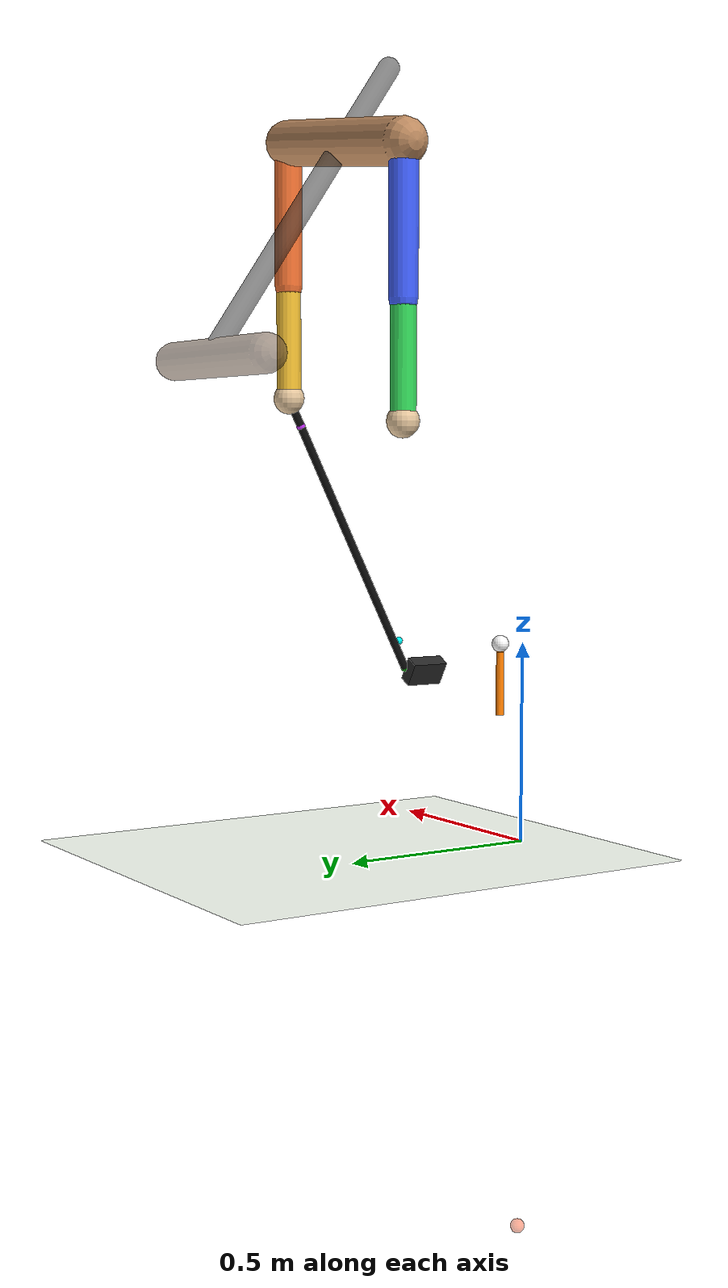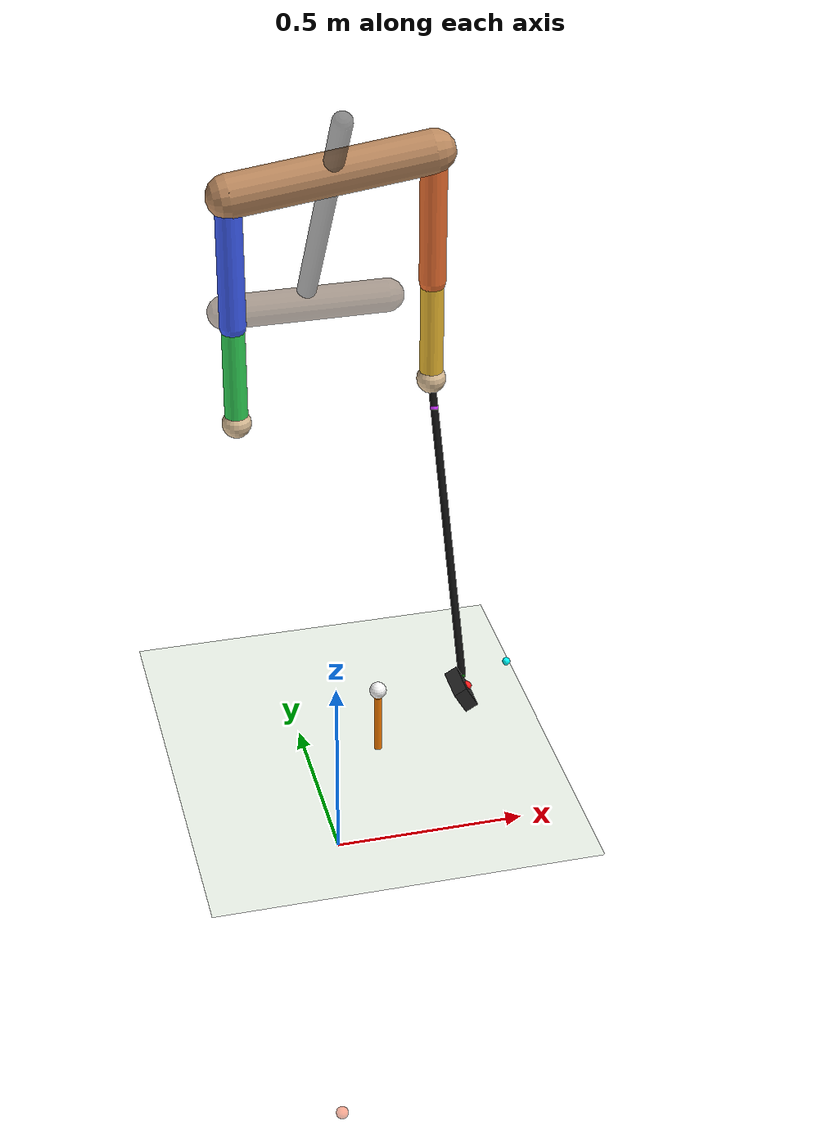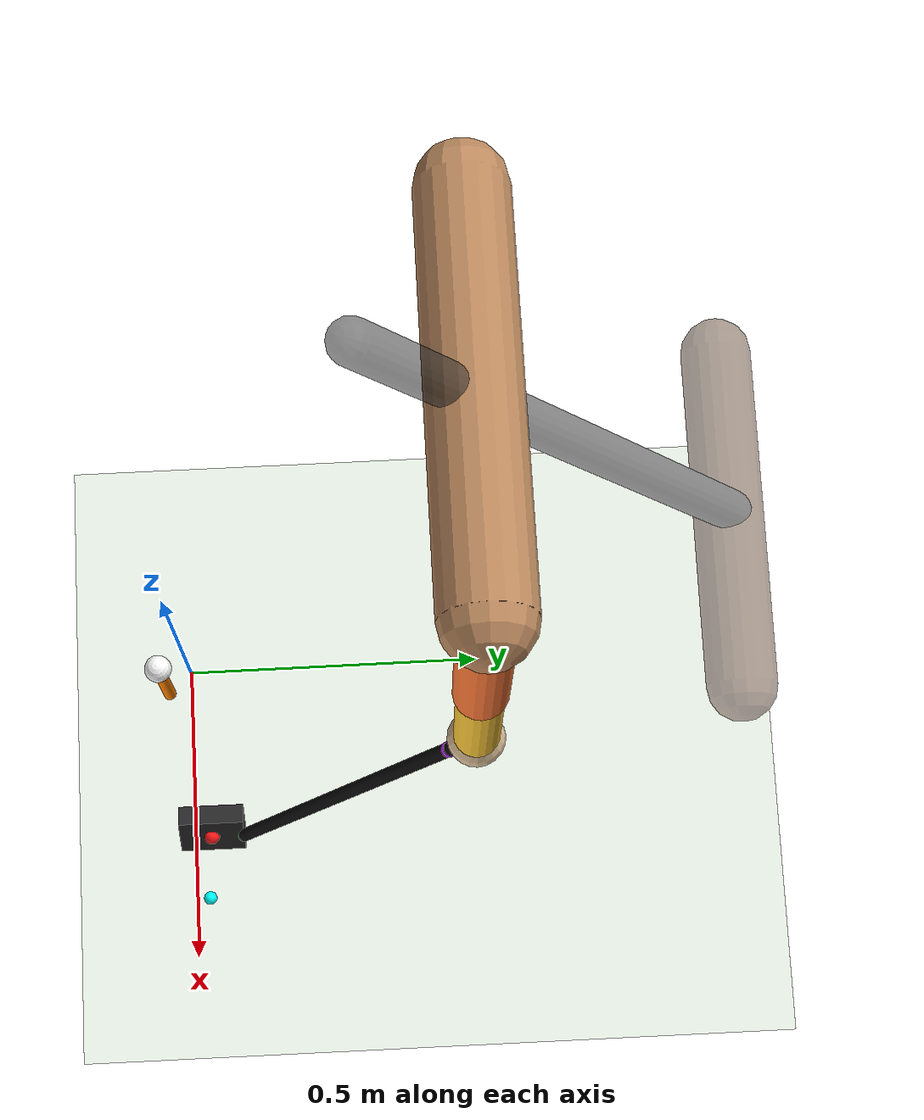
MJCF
<mujoco model="two_arm_joint_golf">
  <compiler angle="radian"/>

  <option integrator="RK4"/>

  <default>
    <joint armature="0.01" damping="1"/>
    <geom friction="0.9 0.02 0.001"/>
  </default>

  <worldbody>
    <geom name="floor" size="8 8 0.1" type="plane" rgba="0.76 0.86 0.72 1"/>
    <geom name="fixed_spine_axis" size="0.026 0.4" pos="0.105 0.563244 1.54055" quat="0.300706 -0.953717 0 0" type="capsule" contype="0" conaffinity="0" rgba="0.18 0.18 0.18 0.55"/>
    <geom name="fixed_pelvis_bar" size="0.045 0.22" pos="0.105 0.792674 1.18289" quat="0.707107 0 -0.707107 0" type="capsule" contype="0" conaffinity="0" rgba="0.42 0.32 0.24 0.55"/>
    <geom name="chest_hinge_marker" size="0.032" pos="0.105 0.46 1.688" contype="0" conaffinity="0" rgba="0.05 0.05 0.05 0.65"/>
    <light pos="0 1 3" dir="0 -0.287348 -0.957826" diffuse="1 1 1"/>
    <body name="tee" pos="0.1053 -0.0079 0.388964">
      <geom name="tee_geom" size="0.01 0.08" type="cylinder" rgba="1 0.5 0 1"/>
    </body>
    <body name="ball" pos="0.1053 -0.0079 0.4903">
      <joint name="ball_free" type="free"/>
      <geom name="golf_ball" size="0.021336" condim="4" friction="0.45 0.01" solref="0.004" solimp="0.99 0.995" mass="0.046" rgba="1 1 1 1"/>
    </body>
    <body name="target_left_wrist_body" pos="0 0 -1" mocap="true">
      <geom name="target_left_wrist_geom" size="0.018" contype="0" conaffinity="0" rgba="1 0.3 0.1 0.45"/>
    </body>
    <body name="target_right_wrist_body" pos="0 0 -1" mocap="true">
      <geom name="target_right_wrist_geom" size="0.018" contype="0" conaffinity="0" rgba="0.1 0.5 1 0.45"/>
    </body>
    <body name="target_clubhead_body" pos="0 0 -1" mocap="true">
      <geom name="target_clubhead_geom" size="0.018" contype="0" conaffinity="0" rgba="1 1 0 0.55"/>
    </body>
    <body name="target_left_elbow_body" pos="0 0 -1" mocap="true">
      <geom name="target_left_elbow_geom" size="0.018" contype="0" conaffinity="0" rgba="1 0.6 0.1 0.35"/>
    </body>
    <body name="target_right_elbow_body" pos="0 0 -1" mocap="true">
      <geom name="target_right_elbow_geom" size="0.018" contype="0" conaffinity="0" rgba="0.1 1 0.4 0.35"/>
    </body>
    <body name="chest" pos="0.105 0.46 1.688">
      <joint name="chest_turn" pos="0 0 0" axis="0 -0.573576 0.819152" limited="true" range="-2.18166 2.18166" armature="0.08" damping="4"/>
      <joint name="chest_forward_bend" pos="0 0 0" axis="0 1 0" limited="true" range="-0.436332 0.314159" armature="0.1" damping="5"/>
      <geom name="chest_bar" size="0.055 0.256008" quat="0.661439 0 -0.749999 0" type="capsule" mass="16" rgba="0.75 0.55 0.38 1"/>
      <site name="right_shoulder_site" pos="-0.254 0 -0.032" size="0.018" rgba="0.1 0.1 1 1"/>
      <site name="left_shoulder_site" pos="0.254 0 0.032" size="0.018" rgba="1 0.2 0.1 1"/>
      <body name="right_shoulder_turn_body" pos="-0.254 0 -0.032">
        <inertial pos="0 0 0" mass="0.001" diaginertia="1e-06 1e-06 1e-06"/>
        <joint name="right_shoulder_turn" pos="0 0 0" axis="0 0 1" limited="true" range="-2.79253 2.79253" armature="0.05" damping="2.5"/>
        <body name="right_shoulder_lift_body">
          <inertial pos="0 0 0" mass="0.001" diaginertia="1e-06 1e-06 1e-06"/>
          <joint name="right_shoulder_lift" pos="0 0 0" axis="1 0 0" limited="true" range="-2.79253 2.79253" armature="0.05" damping="2.5"/>
          <body name="right_upper_arm">
            <joint name="right_shoulder_roll" pos="0 0 0" axis="0 0 1" limited="true" range="-2.44346 2.44346" armature="0.03" damping="1.5"/>
            <geom name="right_upper_arm_geom" size="0.034 0.1722" pos="0 0 -0.1722" type="capsule" mass="1.9" rgba="0.25 0.38 1 1"/>
            <body name="right_elbow_flex_body" pos="0 0 -0.3444">
              <inertial pos="0 0 0" mass="0.001" diaginertia="1e-06 1e-06 1e-06"/>
              <joint name="right_elbow_flex" pos="0 0 0" axis="-1 0 0" limited="true" range="0 2.35619" armature="0.035" damping="1.8"/>
              <site name="right_elbow_site" pos="0 0 0" size="0.012" rgba="1 0.5 0 1"/>
              <body name="right_forearm">
                <joint name="right_forearm_rotation" pos="0 0 0" axis="0 0 -1" limited="true" range="-2.0944 2.0944" armature="0.024" damping="1.2"/>
                <geom name="right_forearm_geom" size="0.03 0.1366" pos="0 0 -0.1366" type="capsule" mass="1.25" rgba="0.2 0.85 0.35 1"/>
                <body name="right_wrist_flex_body" pos="0 0 -0.2732">
                  <inertial pos="0 0 0" mass="0.001" diaginertia="1e-06 1e-06 1e-06"/>
                  <joint name="right_wrist_flex" pos="0 0 0" axis="-1 0 0" limited="true" range="-1.5708 1.5708" armature="0.02"/>
                  <body name="right_hand">
                    <joint name="right_wrist_deviation" pos="0 0 0" axis="0 1 0" limited="true" range="-1.22173 0.872665" armature="0.02"/>
                    <geom name="right_hand_geom" size="0.038" mass="0.45" rgba="0.9 0.78 0.62 1"/>
                    <site name="right_grip_site" pos="0 0 0" size="0.012" rgba="0 0.8 1 1"/>
                  </body>
                </body>
              </body>
            </body>
          </body>
        </body>
      </body>
      <body name="left_shoulder_turn_body" pos="0.254 0 0.032">
        <inertial pos="0 0 0" mass="0.001" diaginertia="1e-06 1e-06 1e-06"/>
        <joint name="left_shoulder_turn" pos="0 0 0" axis="0 0 1" limited="true" range="-2.79253 2.79253" armature="0.05" damping="2.5"/>
        <body name="left_shoulder_lift_body">
          <inertial pos="0 0 0" mass="0.001" diaginertia="1e-06 1e-06 1e-06"/>
          <joint name="left_shoulder_lift" pos="0 0 0" axis="1 0 0" limited="true" range="-2.79253 2.79253" armature="0.05" damping="2.5"/>
          <body name="left_upper_arm">
            <joint name="left_shoulder_roll" pos="0 0 0" axis="0 0 1" limited="true" range="-2.44346 2.44346" armature="0.03" damping="1.5"/>
            <geom name="left_upper_arm_geom" size="0.034 0.1722" pos="0 0 -0.1722" type="capsule" mass="1.9" rgba="0.95 0.45 0.2 1"/>
            <body name="left_elbow_flex_body" pos="0 0 -0.3444">
              <inertial pos="0 0 0" mass="0.001" diaginertia="1e-06 1e-06 1e-06"/>
              <joint name="left_elbow_flex" pos="0 0 0" axis="-1 0 0" limited="true" range="0 2.35619" armature="0.035" damping="1.8"/>
              <site name="left_elbow_site" pos="0 0 0" size="0.012" rgba="1 0.5 0 1"/>
              <body name="left_forearm">
                <joint name="left_forearm_rotation" pos="0 0 0" axis="0 0 -1" limited="true" range="-2.0944 2.0944" armature="0.024" damping="1.2"/>
                <geom name="left_forearm_geom" size="0.03 0.1366" pos="0 0 -0.1366" type="capsule" mass="1.25" rgba="0.95 0.75 0.2 1"/>
                <body name="left_wrist_flex_body" pos="0 0 -0.2732">
                  <inertial pos="0 0 0" mass="0.001" diaginertia="1e-06 1e-06 1e-06"/>
                  <joint name="left_wrist_flex" pos="0 0 0" axis="1 0 0" limited="true" range="-1.5708 1.5708" armature="0.02"/>
                  <body name="left_hand">
                    <joint name="left_wrist_deviation" pos="0 0 0" axis="0 1 0" limited="true" range="-1.22173 0.872665" armature="0.02"/>
                    <geom name="left_hand_geom" size="0.038" mass="0.45" rgba="0.9 0.78 0.62 1"/>
                    <site name="left_grip_site" pos="0 0 0" size="0.012" rgba="0 0.8 1 1"/>
                    <body name="club">
                      <geom name="club_shaft_geom" size="0.01 0.386395" pos="0 -0.174 -0.345" quat="0.972849 -0.231442 0 0" type="capsule" mass="0.1" rgba="0.05 0.05 0.05 1"/>
                      <geom name="club_head_geom" size="0.018 0.05 0.032" pos="-0.015588 -0.398 -0.699" quat="0.965926 0 -0.258819 0" type="box" condim="4" friction="0.8" solref="0.004" solimp="0.99 0.995" mass="0.27" rgba="0.16 0.16 0.16 1"/>
                      <site name="club_grip_site" pos="0 0 0" size="0.012" rgba="0 0.7 1 1"/>
                      <site name="club_trail_grip_site" pos="0 -0.034314 -0.068037" size="0.011" rgba="0.8 0.2 1 1"/>
                      <site name="club_mid_site" pos="0 -0.174 -0.345" size="0.009" rgba="1 0.8 0 1"/>
                      <site name="club_heel_site" pos="0 -0.348 -0.69" size="0.01" rgba="0.1 1 0.1 1"/>
                      <site name="clubhead_site" pos="0 -0.398 -0.69" size="0.012" rgba="1 0.1 0.1 1"/>
                      <site name="club_face_normal_site" pos="0.103923 -0.398 -0.63" size="0.01" rgba="0 1 1 1"/>
                    </body>
                  </body>
                </body>
              </body>
            </body>
          </body>
        </body>
      </body>
    </body>
  </worldbody>

  <equality>
    <weld name="right_hand_rigid_grip" site1="right_grip_site" site2="club_trail_grip_site" torquescale="1" solref="0.006" solimp="0.99 0.995"/>
  </equality>

  <actuator>
    <general name="chest_turn_motor" joint="chest_turn" ctrllimited="true" ctrlrange="-120 120"/>
    <general name="chest_forward_bend_motor" joint="chest_forward_bend" ctrllimited="true" ctrlrange="-85 85"/>
    <general name="left_shoulder_turn_motor" joint="left_shoulder_turn" ctrllimited="true" ctrlrange="-75 75"/>
    <general name="left_shoulder_lift_motor" joint="left_shoulder_lift" ctrllimited="true" ctrlrange="-75 75"/>
    <general name="left_shoulder_roll_motor" joint="left_shoulder_roll" ctrllimited="true" ctrlrange="-45 45"/>
    <general name="left_elbow_flex_motor" joint="left_elbow_flex" ctrllimited="true" ctrlrange="-60 60"/>
    <general name="left_forearm_rotation_motor" joint="left_forearm_rotation" ctrllimited="true" ctrlrange="-28 28"/>
    <general name="left_wrist_flex_motor" joint="left_wrist_flex" ctrllimited="true" ctrlrange="-22 22"/>
    <general name="left_wrist_deviation_motor" joint="left_wrist_deviation" ctrllimited="true" ctrlrange="-18 18"/>
    <general name="right_shoulder_turn_motor" joint="right_shoulder_turn" ctrllimited="true" ctrlrange="-75 75"/>
    <general name="right_shoulder_lift_motor" joint="right_shoulder_lift" ctrllimited="true" ctrlrange="-75 75"/>
    <general name="right_shoulder_roll_motor" joint="right_shoulder_roll" ctrllimited="true" ctrlrange="-45 45"/>
    <general name="right_elbow_flex_motor" joint="right_elbow_flex" ctrllimited="true" ctrlrange="-60 60"/>
    <general name="right_forearm_rotation_motor" joint="right_forearm_rotation" ctrllimited="true" ctrlrange="-28 28"/>
    <general name="right_wrist_flex_motor" joint="right_wrist_flex" ctrllimited="true" ctrlrange="-22 22"/>
    <general name="right_wrist_deviation_motor" joint="right_wrist_deviation" ctrllimited="true" ctrlrange="-18 18"/>
  </actuator>
</mujoco>
